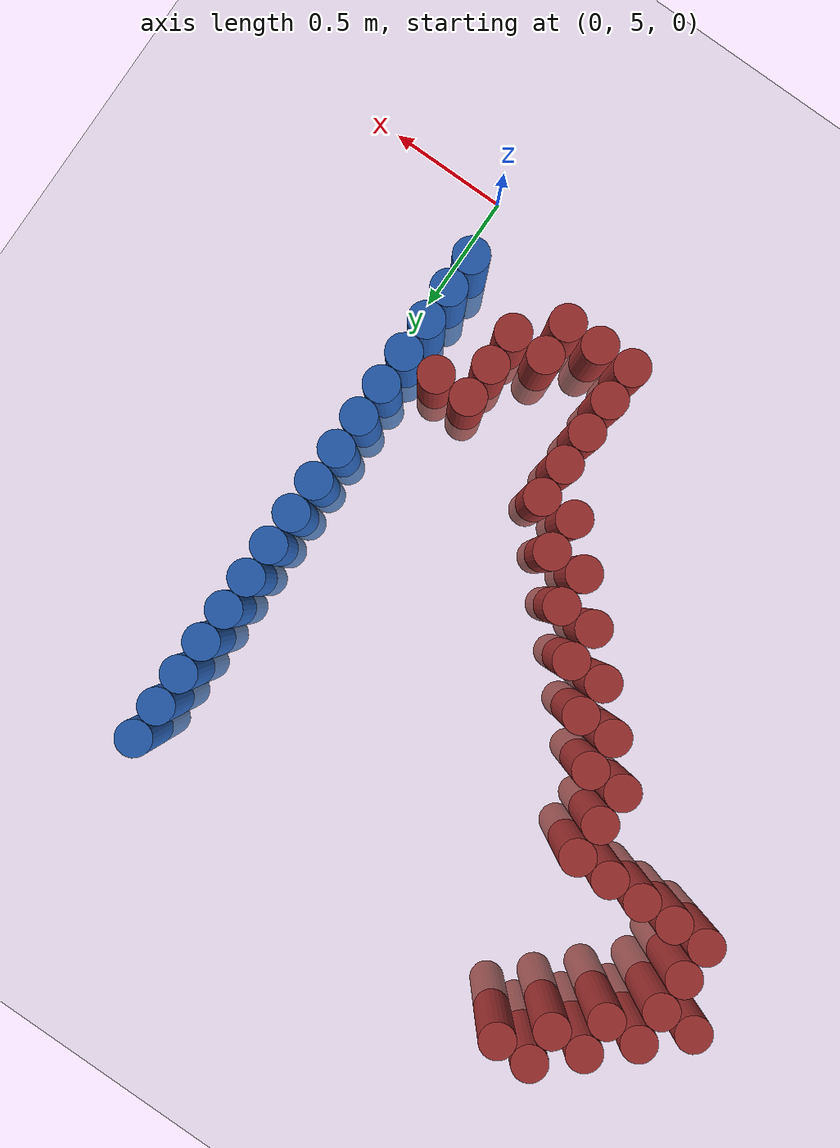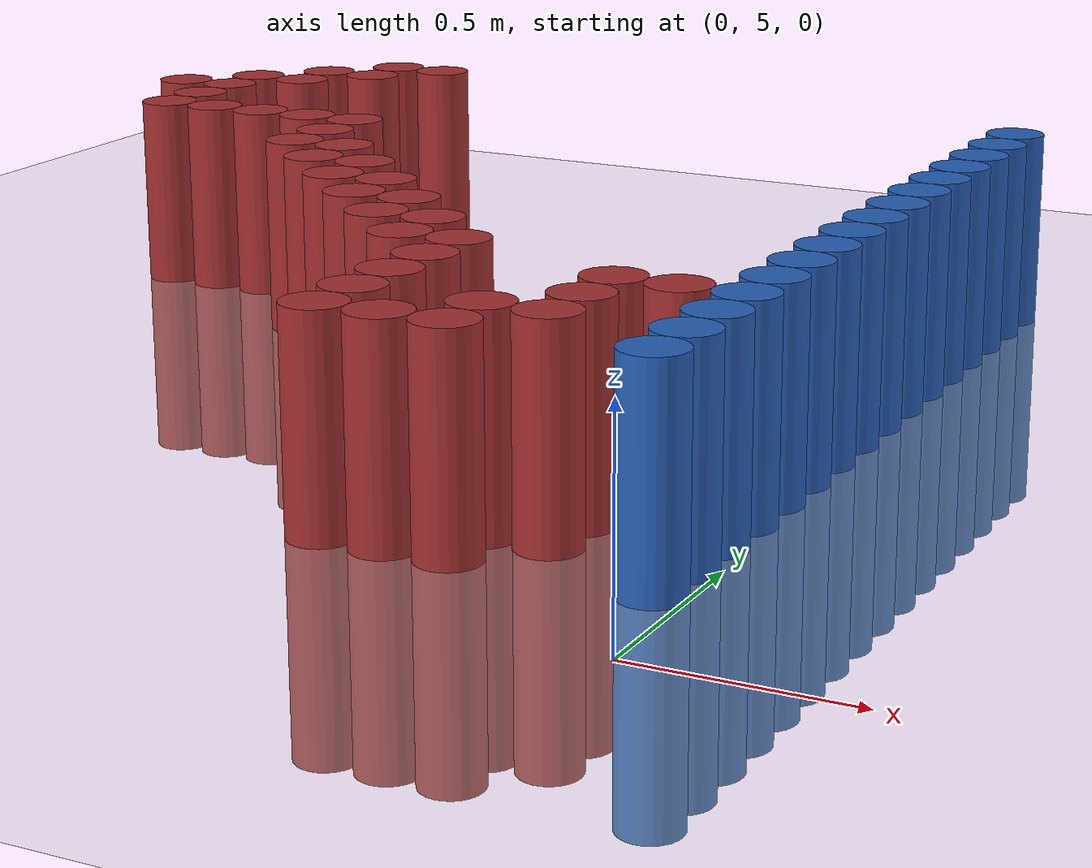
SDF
<sdf version="1.6">
 <world name="default">
  <model name="ground_plane">
   <static>1</static>
   <link name="link">
    <collision name="collision">
     <geometry><plane><normal>0 0 1</normal><size>100 100</size></plane></geometry>
     <surface><friction><ode><mu>100</mu><mu2>50</mu2></ode></friction></surface>
    </collision>
    <visual name="visual">
     <cast_shadows>0</cast_shadows>
     <geometry><plane><normal>0 0 1</normal><size>100 100</size></plane></geometry>
     <material>
      <script><uri>file://media/materials/scripts/gazebo.material</uri><name>Gazebo/Grey</name></script>
     </material>
    </visual>
   </link>
  </model>
  <model name="unit_cylinder_183">
   <static>1</static>
   <pose>-2.475000 7.275000 0.000000 0.000000 0.000000 0.000000</pose>
   <link name="link">
    <inertial>
     <mass>1</mass>
     <inertia><ixx>0.145833</ixx><ixy>0</ixy><ixz>0</ixz><iyy>0.145833</iyy><iyz>0</iyz><izz>0.125</izz></inertia>
    </inertial>
    <collision name="collision">
     <geometry><cylinder><radius>0.075000</radius><length>1</length></cylinder></geometry>
    </collision>
    <visual name="visual">
     <geometry><cylinder><radius>0.075000</radius><length>1</length></cylinder></geometry>
     <material>
      <ambient>0.648000 0.192000 0.192000 1</ambient>
      <diffuse>0.648000 0.192000 0.192000 1</diffuse>
     </material>
     <material>
      <script><name>Gazebo/Grey</name><uri>file://media/materials/scripts/gazebo.material</uri></script>
     </material>
    </visual>
   </link>
  </model>
  <model name="unit_cylinder_184">
   <static>1</static>
   <pose>-2.325000 6.975000 0.000000 0.000000 0.000000 0.000000</pose>
   <link name="link">
    <inertial>
     <mass>1</mass>
     <inertia><ixx>0.145833</ixx><ixy>0</ixy><ixz>0</ixz><iyy>0.145833</iyy><iyz>0</iyz><izz>0.125</izz></inertia>
    </inertial>
    <collision name="collision">
     <geometry><cylinder><radius>0.075000</radius><length>1</length></cylinder></geometry>
    </collision>
    <visual name="visual">
     <geometry><cylinder><radius>0.075000</radius><length>1</length></cylinder></geometry>
     <material>
      <ambient>0.648000 0.192000 0.192000 1</ambient>
      <diffuse>0.648000 0.192000 0.192000 1</diffuse>
     </material>
     <material>
      <script><name>Gazebo/Grey</name><uri>file://media/materials/scripts/gazebo.material</uri></script>
     </material>
    </visual>
   </link>
  </model>
  <model name="unit_cylinder_185">
   <static>1</static>
   <pose>-2.325000 7.125000 0.000000 0.000000 0.000000 0.000000</pose>
   <link name="link">
    <inertial>
     <mass>1</mass>
     <inertia><ixx>0.145833</ixx><ixy>0</ixy><ixz>0</ixz><iyy>0.145833</iyy><iyz>0</iyz><izz>0.125</izz></inertia>
    </inertial>
    <collision name="collision">
     <geometry><cylinder><radius>0.075000</radius><length>1</length></cylinder></geometry>
    </collision>
    <visual name="visual">
     <geometry><cylinder><radius>0.075000</radius><length>1</length></cylinder></geometry>
     <material>
      <ambient>0.648000 0.192000 0.192000 1</ambient>
      <diffuse>0.648000 0.192000 0.192000 1</diffuse>
     </material>
     <material>
      <script><name>Gazebo/Grey</name><uri>file://media/materials/scripts/gazebo.material</uri></script>
     </material>
    </visual>
   </link>
  </model>
  <model name="unit_cylinder_186">
   <static>1</static>
   <pose>-2.325000 7.275000 0.000000 0.000000 0.000000 0.000000</pose>
   <link name="link">
    <inertial>
     <mass>1</mass>
     <inertia><ixx>0.145833</ixx><ixy>0</ixy><ixz>0</ixz><iyy>0.145833</iyy><iyz>0</iyz><izz>0.125</izz></inertia>
    </inertial>
    <collision name="collision">
     <geometry><cylinder><radius>0.075000</radius><length>1</length></cylinder></geometry>
    </collision>
    <visual name="visual">
     <geometry><cylinder><radius>0.075000</radius><length>1</length></cylinder></geometry>
     <material>
      <ambient>0.648000 0.192000 0.192000 1</ambient>
      <diffuse>0.648000 0.192000 0.192000 1</diffuse>
     </material>
     <material>
      <script><name>Gazebo/Grey</name><uri>file://media/materials/scripts/gazebo.material</uri></script>
     </material>
    </visual>
   </link>
  </model>
  <model name="unit_cylinder_187">
   <static>1</static>
   <pose>-2.325000 7.425000 0.000000 0.000000 0.000000 0.000000</pose>
   <link name="link">
    <inertial>
     <mass>1</mass>
     <inertia><ixx>0.145833</ixx><ixy>0</ixy><ixz>0</ixz><iyy>0.145833</iyy><iyz>0</iyz><izz>0.125</izz></inertia>
    </inertial>
    <collision name="collision">
     <geometry><cylinder><radius>0.075000</radius><length>1</length></cylinder></geometry>
    </collision>
    <visual name="visual">
     <geometry><cylinder><radius>0.075000</radius><length>1</length></cylinder></geometry>
     <material>
      <ambient>0.648000 0.192000 0.192000 1</ambient>
      <diffuse>0.648000 0.192000 0.192000 1</diffuse>
     </material>
     <material>
      <script><name>Gazebo/Grey</name><uri>file://media/materials/scripts/gazebo.material</uri></script>
     </material>
    </visual>
   </link>
  </model>
  <model name="unit_cylinder_188">
   <static>1</static>
   <pose>-2.175000 6.975000 0.000000 0.000000 0.000000 0.000000</pose>
   <link name="link">
    <inertial>
     <mass>1</mass>
     <inertia><ixx>0.145833</ixx><ixy>0</ixy><ixz>0</ixz><iyy>0.145833</iyy><iyz>0</iyz><izz>0.125</izz></inertia>
    </inertial>
    <collision name="collision">
     <geometry><cylinder><radius>0.075000</radius><length>1</length></cylinder></geometry>
    </collision>
    <visual name="visual">
     <geometry><cylinder><radius>0.075000</radius><length>1</length></cylinder></geometry>
     <material>
      <ambient>0.648000 0.192000 0.192000 1</ambient>
      <diffuse>0.648000 0.192000 0.192000 1</diffuse>
     </material>
     <material>
      <script><name>Gazebo/Grey</name><uri>file://media/materials/scripts/gazebo.material</uri></script>
     </material>
    </visual>
   </link>
  </model>
  <model name="unit_cylinder_189">
   <static>1</static>
   <pose>-2.175000 7.425000 0.000000 0.000000 0.000000 0.000000</pose>
   <link name="link">
    <inertial>
     <mass>1</mass>
     <inertia><ixx>0.145833</ixx><ixy>0</ixy><ixz>0</ixz><iyy>0.145833</iyy><iyz>0</iyz><izz>0.125</izz></inertia>
    </inertial>
    <collision name="collision">
     <geometry><cylinder><radius>0.075000</radius><length>1</length></cylinder></geometry>
    </collision>
    <visual name="visual">
     <geometry><cylinder><radius>0.075000</radius><length>1</length></cylinder></geometry>
     <material>
      <ambient>0.648000 0.192000 0.192000 1</ambient>
      <diffuse>0.648000 0.192000 0.192000 1</diffuse>
     </material>
     <material>
      <script><name>Gazebo/Grey</name><uri>file://media/materials/scripts/gazebo.material</uri></script>
     </material>
    </visual>
   </link>
  </model>
  <model name="unit_cylinder_190">
   <static>1</static>
   <pose>-2.175000 7.575000 0.000000 0.000000 0.000000 0.000000</pose>
   <link name="link">
    <inertial>
     <mass>1</mass>
     <inertia><ixx>0.145833</ixx><ixy>0</ixy><ixz>0</ixz><iyy>0.145833</iyy><iyz>0</iyz><izz>0.125</izz></inertia>
    </inertial>
    <collision name="collision">
     <geometry><cylinder><radius>0.075000</radius><length>1</length></cylinder></geometry>
    </collision>
    <visual name="visual">
     <geometry><cylinder><radius>0.075000</radius><length>1</length></cylinder></geometry>
     <material>
      <ambient>0.648000 0.192000 0.192000 1</ambient>
      <diffuse>0.648000 0.192000 0.192000 1</diffuse>
     </material>
     <material>
      <script><name>Gazebo/Grey</name><uri>file://media/materials/scripts/gazebo.material</uri></script>
     </material>
    </visual>
   </link>
  </model>
  <model name="unit_cylinder_191">
   <static>1</static>
   <pose>-2.025000 6.975000 0.000000 0.000000 0.000000 0.000000</pose>
   <link name="link">
    <inertial>
     <mass>1</mass>
     <inertia><ixx>0.145833</ixx><ixy>0</ixy><ixz>0</ixz><iyy>0.145833</iyy><iyz>0</iyz><izz>0.125</izz></inertia>
    </inertial>
    <collision name="collision">
     <geometry><cylinder><radius>0.075000</radius><length>1</length></cylinder></geometry>
    </collision>
    <visual name="visual">
     <geometry><cylinder><radius>0.075000</radius><length>1</length></cylinder></geometry>
     <material>
      <ambient>0.648000 0.192000 0.192000 1</ambient>
      <diffuse>0.648000 0.192000 0.192000 1</diffuse>
     </material>
     <material>
      <script><name>Gazebo/Grey</name><uri>file://media/materials/scripts/gazebo.material</uri></script>
     </material>
    </visual>
   </link>
  </model>
  <model name="unit_cylinder_192">
   <static>1</static>
   <pose>-2.025000 7.575000 0.000000 0.000000 0.000000 0.000000</pose>
   <link name="link">
    <inertial>
     <mass>1</mass>
     <inertia><ixx>0.145833</ixx><ixy>0</ixy><ixz>0</ixz><iyy>0.145833</iyy><iyz>0</iyz><izz>0.125</izz></inertia>
    </inertial>
    <collision name="collision">
     <geometry><cylinder><radius>0.075000</radius><length>1</length></cylinder></geometry>
    </collision>
    <visual name="visual">
     <geometry><cylinder><radius>0.075000</radius><length>1</length></cylinder></geometry>
     <material>
      <ambient>0.648000 0.192000 0.192000 1</ambient>
      <diffuse>0.648000 0.192000 0.192000 1</diffuse>
     </material>
     <material>
      <script><name>Gazebo/Grey</name><uri>file://media/materials/scripts/gazebo.material</uri></script>
     </material>
    </visual>
   </link>
  </model>
  <model name="unit_cylinder_193">
   <static>1</static>
   <pose>-2.025000 7.725000 0.000000 0.000000 0.000000 0.000000</pose>
   <link name="link">
    <inertial>
     <mass>1</mass>
     <inertia><ixx>0.145833</ixx><ixy>0</ixy><ixz>0</ixz><iyy>0.145833</iyy><iyz>0</iyz><izz>0.125</izz></inertia>
    </inertial>
    <collision name="collision">
     <geometry><cylinder><radius>0.075000</radius><length>1</length></cylinder></geometry>
    </collision>
    <visual name="visual">
     <geometry><cylinder><radius>0.075000</radius><length>1</length></cylinder></geometry>
     <material>
      <ambient>0.648000 0.192000 0.192000 1</ambient>
      <diffuse>0.648000 0.192000 0.192000 1</diffuse>
     </material>
     <material>
      <script><name>Gazebo/Grey</name><uri>file://media/materials/scripts/gazebo.material</uri></script>
     </material>
    </visual>
   </link>
  </model>
  <model name="unit_cylinder_194">
   <static>1</static>
   <pose>-1.875000 6.975000 0.000000 0.000000 0.000000 0.000000</pose>
   <link name="link">
    <inertial>
     <mass>1</mass>
     <inertia><ixx>0.145833</ixx><ixy>0</ixy><ixz>0</ixz><iyy>0.145833</iyy><iyz>0</iyz><izz>0.125</izz></inertia>
    </inertial>
    <collision name="collision">
     <geometry><cylinder><radius>0.075000</radius><length>1</length></cylinder></geometry>
    </collision>
    <visual name="visual">
     <geometry><cylinder><radius>0.075000</radius><length>1</length></cylinder></geometry>
     <material>
      <ambient>0.648000 0.192000 0.192000 1</ambient>
      <diffuse>0.648000 0.192000 0.192000 1</diffuse>
     </material>
     <material>
      <script><name>Gazebo/Grey</name><uri>file://media/materials/scripts/gazebo.material</uri></script>
     </material>
    </visual>
   </link>
  </model>
  <model name="unit_cylinder_195">
   <static>1</static>
   <pose>-1.875000 7.725000 0.000000 0.000000 0.000000 0.000000</pose>
   <link name="link">
    <inertial>
     <mass>1</mass>
     <inertia><ixx>0.145833</ixx><ixy>0</ixy><ixz>0</ixz><iyy>0.145833</iyy><iyz>0</iyz><izz>0.125</izz></inertia>
    </inertial>
    <collision name="collision">
     <geometry><cylinder><radius>0.075000</radius><length>1</length></cylinder></geometry>
    </collision>
    <visual name="visual">
     <geometry><cylinder><radius>0.075000</radius><length>1</length></cylinder></geometry>
     <material>
      <ambient>0.648000 0.192000 0.192000 1</ambient>
      <diffuse>0.648000 0.192000 0.192000 1</diffuse>
     </material>
     <material>
      <script><name>Gazebo/Grey</name><uri>file://media/materials/scripts/gazebo.material</uri></script>
     </material>
    </visual>
   </link>
  </model>
  <model name="unit_cylinder_196">
   <static>1</static>
   <pose>-1.725000 6.675000 0.000000 0.000000 0.000000 0.000000</pose>
   <link name="link">
    <inertial>
     <mass>1</mass>
     <inertia><ixx>0.145833</ixx><ixy>0</ixy><ixz>0</ixz><iyy>0.145833</iyy><iyz>0</iyz><izz>0.125</izz></inertia>
    </inertial>
    <collision name="collision">
     <geometry><cylinder><radius>0.075000</radius><length>1</length></cylinder></geometry>
    </collision>
    <visual name="visual">
     <geometry><cylinder><radius>0.075000</radius><length>1</length></cylinder></geometry>
     <material>
      <ambient>0.648000 0.192000 0.192000 1</ambient>
      <diffuse>0.648000 0.192000 0.192000 1</diffuse>
     </material>
     <material>
      <script><name>Gazebo/Grey</name><uri>file://media/materials/scripts/gazebo.material</uri></script>
     </material>
    </visual>
   </link>
  </model>
  <model name="unit_cylinder_197">
   <static>1</static>
   <pose>-1.725000 6.825000 0.000000 0.000000 0.000000 0.000000</pose>
   <link name="link">
    <inertial>
     <mass>1</mass>
     <inertia><ixx>0.145833</ixx><ixy>0</ixy><ixz>0</ixz><iyy>0.145833</iyy><iyz>0</iyz><izz>0.125</izz></inertia>
    </inertial>
    <collision name="collision">
     <geometry><cylinder><radius>0.075000</radius><length>1</length></cylinder></geometry>
    </collision>
    <visual name="visual">
     <geometry><cylinder><radius>0.075000</radius><length>1</length></cylinder></geometry>
     <material>
      <ambient>0.648000 0.192000 0.192000 1</ambient>
      <diffuse>0.648000 0.192000 0.192000 1</diffuse>
     </material>
     <material>
      <script><name>Gazebo/Grey</name><uri>file://media/materials/scripts/gazebo.material</uri></script>
     </material>
    </visual>
   </link>
  </model>
  <model name="unit_cylinder_198">
   <static>1</static>
   <pose>-1.725000 6.975000 0.000000 0.000000 0.000000 0.000000</pose>
   <link name="link">
    <inertial>
     <mass>1</mass>
     <inertia><ixx>0.145833</ixx><ixy>0</ixy><ixz>0</ixz><iyy>0.145833</iyy><iyz>0</iyz><izz>0.125</izz></inertia>
    </inertial>
    <collision name="collision">
     <geometry><cylinder><radius>0.075000</radius><length>1</length></cylinder></geometry>
    </collision>
    <visual name="visual">
     <geometry><cylinder><radius>0.075000</radius><length>1</length></cylinder></geometry>
     <material>
      <ambient>0.648000 0.192000 0.192000 1</ambient>
      <diffuse>0.648000 0.192000 0.192000 1</diffuse>
     </material>
     <material>
      <script><name>Gazebo/Grey</name><uri>file://media/materials/scripts/gazebo.material</uri></script>
     </material>
    </visual>
   </link>
  </model>
  <model name="unit_cylinder_201">
   <static>1</static>
   <pose>-1.575000 6.525000 0.000000 0.000000 0.000000 0.000000</pose>
   <link name="link">
    <inertial>
     <mass>1</mass>
     <inertia><ixx>0.145833</ixx><ixy>0</ixy><ixz>0</ixz><iyy>0.145833</iyy><iyz>0</iyz><izz>0.125</izz></inertia>
    </inertial>
    <collision name="collision">
     <geometry><cylinder><radius>0.075000</radius><length>1</length></cylinder></geometry>
    </collision>
    <visual name="visual">
     <geometry><cylinder><radius>0.075000</radius><length>1</length></cylinder></geometry>
     <material>
      <ambient>0.648000 0.192000 0.192000 1</ambient>
      <diffuse>0.648000 0.192000 0.192000 1</diffuse>
     </material>
     <material>
      <script><name>Gazebo/Grey</name><uri>file://media/materials/scripts/gazebo.material</uri></script>
     </material>
    </visual>
   </link>
  </model>
  <model name="unit_cylinder_202">
   <static>1</static>
   <pose>-1.575000 6.675000 0.000000 0.000000 0.000000 0.000000</pose>
   <link name="link">
    <inertial>
     <mass>1</mass>
     <inertia><ixx>0.145833</ixx><ixy>0</ixy><ixz>0</ixz><iyy>0.145833</iyy><iyz>0</iyz><izz>0.125</izz></inertia>
    </inertial>
    <collision name="collision">
     <geometry><cylinder><radius>0.075000</radius><length>1</length></cylinder></geometry>
    </collision>
    <visual name="visual">
     <geometry><cylinder><radius>0.075000</radius><length>1</length></cylinder></geometry>
     <material>
      <ambient>0.648000 0.192000 0.192000 1</ambient>
      <diffuse>0.648000 0.192000 0.192000 1</diffuse>
     </material>
     <material>
      <script><name>Gazebo/Grey</name><uri>file://media/materials/scripts/gazebo.material</uri></script>
     </material>
    </visual>
   </link>
  </model>
  <model name="unit_cylinder_205">
   <static>1</static>
   <pose>-1.425000 6.375000 0.000000 0.000000 0.000000 0.000000</pose>
   <link name="link">
    <inertial>
     <mass>1</mass>
     <inertia><ixx>0.145833</ixx><ixy>0</ixy><ixz>0</ixz><iyy>0.145833</iyy><iyz>0</iyz><izz>0.125</izz></inertia>
    </inertial>
    <collision name="collision">
     <geometry><cylinder><radius>0.075000</radius><length>1</length></cylinder></geometry>
    </collision>
    <visual name="visual">
     <geometry><cylinder><radius>0.075000</radius><length>1</length></cylinder></geometry>
     <material>
      <ambient>0.648000 0.192000 0.192000 1</ambient>
      <diffuse>0.648000 0.192000 0.192000 1</diffuse>
     </material>
     <material>
      <script><name>Gazebo/Grey</name><uri>file://media/materials/scripts/gazebo.material</uri></script>
     </material>
    </visual>
   </link>
  </model>
  <model name="unit_cylinder_206">
   <static>1</static>
   <pose>-1.425000 6.525000 0.000000 0.000000 0.000000 0.000000</pose>
   <link name="link">
    <inertial>
     <mass>1</mass>
     <inertia><ixx>0.145833</ixx><ixy>0</ixy><ixz>0</ixz><iyy>0.145833</iyy><iyz>0</iyz><izz>0.125</izz></inertia>
    </inertial>
    <collision name="collision">
     <geometry><cylinder><radius>0.075000</radius><length>1</length></cylinder></geometry>
    </collision>
    <visual name="visual">
     <geometry><cylinder><radius>0.075000</radius><length>1</length></cylinder></geometry>
     <material>
      <ambient>0.648000 0.192000 0.192000 1</ambient>
      <diffuse>0.648000 0.192000 0.192000 1</diffuse>
     </material>
     <material>
      <script><name>Gazebo/Grey</name><uri>file://media/materials/scripts/gazebo.material</uri></script>
     </material>
    </visual>
   </link>
  </model>
  <model name="unit_cylinder_208">
   <static>1</static>
   <pose>-1.275000 6.225000 0.000000 0.000000 0.000000 0.000000</pose>
   <link name="link">
    <inertial>
     <mass>1</mass>
     <inertia><ixx>0.145833</ixx><ixy>0</ixy><ixz>0</ixz><iyy>0.145833</iyy><iyz>0</iyz><izz>0.125</izz></inertia>
    </inertial>
    <collision name="collision">
     <geometry><cylinder><radius>0.075000</radius><length>1</length></cylinder></geometry>
    </collision>
    <visual name="visual">
     <geometry><cylinder><radius>0.075000</radius><length>1</length></cylinder></geometry>
     <material>
      <ambient>0.648000 0.192000 0.192000 1</ambient>
      <diffuse>0.648000 0.192000 0.192000 1</diffuse>
     </material>
     <material>
      <script><name>Gazebo/Grey</name><uri>file://media/materials/scripts/gazebo.material</uri></script>
     </material>
    </visual>
   </link>
  </model>
  <model name="unit_cylinder_209">
   <static>1</static>
   <pose>-1.275000 6.375000 0.000000 0.000000 0.000000 0.000000</pose>
   <link name="link">
    <inertial>
     <mass>1</mass>
     <inertia><ixx>0.145833</ixx><ixy>0</ixy><ixz>0</ixz><iyy>0.145833</iyy><iyz>0</iyz><izz>0.125</izz></inertia>
    </inertial>
    <collision name="collision">
     <geometry><cylinder><radius>0.075000</radius><length>1</length></cylinder></geometry>
    </collision>
    <visual name="visual">
     <geometry><cylinder><radius>0.075000</radius><length>1</length></cylinder></geometry>
     <material>
      <ambient>0.648000 0.192000 0.192000 1</ambient>
      <diffuse>0.648000 0.192000 0.192000 1</diffuse>
     </material>
     <material>
      <script><name>Gazebo/Grey</name><uri>file://media/materials/scripts/gazebo.material</uri></script>
     </material>
    </visual>
   </link>
  </model>
  <model name="unit_cylinder_211">
   <static>1</static>
   <pose>-1.125000 6.075000 0.000000 0.000000 0.000000 0.000000</pose>
   <link name="link">
    <inertial>
     <mass>1</mass>
     <inertia><ixx>0.145833</ixx><ixy>0</ixy><ixz>0</ixz><iyy>0.145833</iyy><iyz>0</iyz><izz>0.125</izz></inertia>
    </inertial>
    <collision name="collision">
     <geometry><cylinder><radius>0.075000</radius><length>1</length></cylinder></geometry>
    </collision>
    <visual name="visual">
     <geometry><cylinder><radius>0.075000</radius><length>1</length></cylinder></geometry>
     <material>
      <ambient>0.648000 0.192000 0.192000 1</ambient>
      <diffuse>0.648000 0.192000 0.192000 1</diffuse>
     </material>
     <material>
      <script><name>Gazebo/Grey</name><uri>file://media/materials/scripts/gazebo.material</uri></script>
     </material>
    </visual>
   </link>
  </model>
  <model name="unit_cylinder_212">
   <static>1</static>
   <pose>-1.125000 6.225000 0.000000 0.000000 0.000000 0.000000</pose>
   <link name="link">
    <inertial>
     <mass>1</mass>
     <inertia><ixx>0.145833</ixx><ixy>0</ixy><ixz>0</ixz><iyy>0.145833</iyy><iyz>0</iyz><izz>0.125</izz></inertia>
    </inertial>
    <collision name="collision">
     <geometry><cylinder><radius>0.075000</radius><length>1</length></cylinder></geometry>
    </collision>
    <visual name="visual">
     <geometry><cylinder><radius>0.075000</radius><length>1</length></cylinder></geometry>
     <material>
      <ambient>0.648000 0.192000 0.192000 1</ambient>
      <diffuse>0.648000 0.192000 0.192000 1</diffuse>
     </material>
     <material>
      <script><name>Gazebo/Grey</name><uri>file://media/materials/scripts/gazebo.material</uri></script>
     </material>
    </visual>
   </link>
  </model>
  <model name="unit_cylinder_214">
   <static>1</static>
   <pose>-0.975000 5.925000 0.000000 0.000000 0.000000 0.000000</pose>
   <link name="link">
    <inertial>
     <mass>1</mass>
     <inertia><ixx>0.145833</ixx><ixy>0</ixy><ixz>0</ixz><iyy>0.145833</iyy><iyz>0</iyz><izz>0.125</izz></inertia>
    </inertial>
    <collision name="collision">
     <geometry><cylinder><radius>0.075000</radius><length>1</length></cylinder></geometry>
    </collision>
    <visual name="visual">
     <geometry><cylinder><radius>0.075000</radius><length>1</length></cylinder></geometry>
     <material>
      <ambient>0.648000 0.192000 0.192000 1</ambient>
      <diffuse>0.648000 0.192000 0.192000 1</diffuse>
     </material>
     <material>
      <script><name>Gazebo/Grey</name><uri>file://media/materials/scripts/gazebo.material</uri></script>
     </material>
    </visual>
   </link>
  </model>
  <model name="unit_cylinder_215">
   <static>1</static>
   <pose>-0.975000 6.075000 0.000000 0.000000 0.000000 0.000000</pose>
   <link name="link">
    <inertial>
     <mass>1</mass>
     <inertia><ixx>0.145833</ixx><ixy>0</ixy><ixz>0</ixz><iyy>0.145833</iyy><iyz>0</iyz><izz>0.125</izz></inertia>
    </inertial>
    <collision name="collision">
     <geometry><cylinder><radius>0.075000</radius><length>1</length></cylinder></geometry>
    </collision>
    <visual name="visual">
     <geometry><cylinder><radius>0.075000</radius><length>1</length></cylinder></geometry>
     <material>
      <ambient>0.648000 0.192000 0.192000 1</ambient>
      <diffuse>0.648000 0.192000 0.192000 1</diffuse>
     </material>
     <material>
      <script><name>Gazebo/Grey</name><uri>file://media/materials/scripts/gazebo.material</uri></script>
     </material>
    </visual>
   </link>
  </model>
  <model name="unit_cylinder_218">
   <static>1</static>
   <pose>-0.825000 5.325000 0.000000 0.000000 0.000000 0.000000</pose>
   <link name="link">
    <inertial>
     <mass>1</mass>
     <inertia><ixx>0.145833</ixx><ixy>0</ixy><ixz>0</ixz><iyy>0.145833</iyy><iyz>0</iyz><izz>0.125</izz></inertia>
    </inertial>
    <collision name="collision">
     <geometry><cylinder><radius>0.075000</radius><length>1</length></cylinder></geometry>
    </collision>
    <visual name="visual">
     <geometry><cylinder><radius>0.075000</radius><length>1</length></cylinder></geometry>
     <material>
      <ambient>0.648000 0.192000 0.192000 1</ambient>
      <diffuse>0.648000 0.192000 0.192000 1</diffuse>
     </material>
     <material>
      <script><name>Gazebo/Grey</name><uri>file://media/materials/scripts/gazebo.material</uri></script>
     </material>
    </visual>
   </link>
  </model>
  <model name="unit_cylinder_219">
   <static>1</static>
   <pose>-0.825000 5.475000 0.000000 0.000000 0.000000 0.000000</pose>
   <link name="link">
    <inertial>
     <mass>1</mass>
     <inertia><ixx>0.145833</ixx><ixy>0</ixy><ixz>0</ixz><iyy>0.145833</iyy><iyz>0</iyz><izz>0.125</izz></inertia>
    </inertial>
    <collision name="collision">
     <geometry><cylinder><radius>0.075000</radius><length>1</length></cylinder></geometry>
    </collision>
    <visual name="visual">
     <geometry><cylinder><radius>0.075000</radius><length>1</length></cylinder></geometry>
     <material>
      <ambient>0.648000 0.192000 0.192000 1</ambient>
      <diffuse>0.648000 0.192000 0.192000 1</diffuse>
     </material>
     <material>
      <script><name>Gazebo/Grey</name><uri>file://media/materials/scripts/gazebo.material</uri></script>
     </material>
    </visual>
   </link>
  </model>
  <model name="unit_cylinder_220">
   <static>1</static>
   <pose>-0.825000 5.625000 0.000000 0.000000 0.000000 0.000000</pose>
   <link name="link">
    <inertial>
     <mass>1</mass>
     <inertia><ixx>0.145833</ixx><ixy>0</ixy><ixz>0</ixz><iyy>0.145833</iyy><iyz>0</iyz><izz>0.125</izz></inertia>
    </inertial>
    <collision name="collision">
     <geometry><cylinder><radius>0.075000</radius><length>1</length></cylinder></geometry>
    </collision>
    <visual name="visual">
     <geometry><cylinder><radius>0.075000</radius><length>1</length></cylinder></geometry>
     <material>
      <ambient>0.648000 0.192000 0.192000 1</ambient>
      <diffuse>0.648000 0.192000 0.192000 1</diffuse>
     </material>
     <material>
      <script><name>Gazebo/Grey</name><uri>file://media/materials/scripts/gazebo.material</uri></script>
     </material>
    </visual>
   </link>
  </model>
  <model name="unit_cylinder_221">
   <static>1</static>
   <pose>-0.825000 5.775000 0.000000 0.000000 0.000000 0.000000</pose>
   <link name="link">
    <inertial>
     <mass>1</mass>
     <inertia><ixx>0.145833</ixx><ixy>0</ixy><ixz>0</ixz><iyy>0.145833</iyy><iyz>0</iyz><izz>0.125</izz></inertia>
    </inertial>
    <collision name="collision">
     <geometry><cylinder><radius>0.075000</radius><length>1</length></cylinder></geometry>
    </collision>
    <visual name="visual">
     <geometry><cylinder><radius>0.075000</radius><length>1</length></cylinder></geometry>
     <material>
      <ambient>0.648000 0.192000 0.192000 1</ambient>
      <diffuse>0.648000 0.192000 0.192000 1</diffuse>
     </material>
     <material>
      <script><name>Gazebo/Grey</name><uri>file://media/materials/scripts/gazebo.material</uri></script>
     </material>
    </visual>
   </link>
  </model>
  <model name="unit_cylinder_222">
   <static>1</static>
   <pose>-0.825000 5.925000 0.000000 0.000000 0.000000 0.000000</pose>
   <link name="link">
    <inertial>
     <mass>1</mass>
     <inertia><ixx>0.145833</ixx><ixy>0</ixy><ixz>0</ixz><iyy>0.145833</iyy><iyz>0</iyz><izz>0.125</izz></inertia>
    </inertial>
    <collision name="collision">
     <geometry><cylinder><radius>0.075000</radius><length>1</length></cylinder></geometry>
    </collision>
    <visual name="visual">
     <geometry><cylinder><radius>0.075000</radius><length>1</length></cylinder></geometry>
     <material>
      <ambient>0.648000 0.192000 0.192000 1</ambient>
      <diffuse>0.648000 0.192000 0.192000 1</diffuse>
     </material>
     <material>
      <script><name>Gazebo/Grey</name><uri>file://media/materials/scripts/gazebo.material</uri></script>
     </material>
    </visual>
   </link>
  </model>
  <model name="unit_cylinder_226">
   <static>1</static>
   <pose>-0.675000 5.325000 0.000000 0.000000 0.000000 0.000000</pose>
   <link name="link">
    <inertial>
     <mass>1</mass>
     <inertia><ixx>0.145833</ixx><ixy>0</ixy><ixz>0</ixz><iyy>0.145833</iyy><iyz>0</iyz><izz>0.125</izz></inertia>
    </inertial>
    <collision name="collision">
     <geometry><cylinder><radius>0.075000</radius><length>1</length></cylinder></geometry>
    </collision>
    <visual name="visual">
     <geometry><cylinder><radius>0.075000</radius><length>1</length></cylinder></geometry>
     <material>
      <ambient>0.648000 0.192000 0.192000 1</ambient>
      <diffuse>0.648000 0.192000 0.192000 1</diffuse>
     </material>
     <material>
      <script><name>Gazebo/Grey</name><uri>file://media/materials/scripts/gazebo.material</uri></script>
     </material>
    </visual>
   </link>
  </model>
  <model name="unit_cylinder_230">
   <static>1</static>
   <pose>-0.525000 5.325000 0.000000 0.000000 0.000000 0.000000</pose>
   <link name="link">
    <inertial>
     <mass>1</mass>
     <inertia><ixx>0.145833</ixx><ixy>0</ixy><ixz>0</ixz><iyy>0.145833</iyy><iyz>0</iyz><izz>0.125</izz></inertia>
    </inertial>
    <collision name="collision">
     <geometry><cylinder><radius>0.075000</radius><length>1</length></cylinder></geometry>
    </collision>
    <visual name="visual">
     <geometry><cylinder><radius>0.075000</radius><length>1</length></cylinder></geometry>
     <material>
      <ambient>0.648000 0.192000 0.192000 1</ambient>
      <diffuse>0.648000 0.192000 0.192000 1</diffuse>
     </material>
     <material>
      <script><name>Gazebo/Grey</name><uri>file://media/materials/scripts/gazebo.material</uri></script>
     </material>
    </visual>
   </link>
  </model>
  <model name="unit_cylinder_231">
   <static>1</static>
   <pose>-0.525000 5.475000 0.000000 0.000000 0.000000 0.000000</pose>
   <link name="link">
    <inertial>
     <mass>1</mass>
     <inertia><ixx>0.145833</ixx><ixy>0</ixy><ixz>0</ixz><iyy>0.145833</iyy><iyz>0</iyz><izz>0.125</izz></inertia>
    </inertial>
    <collision name="collision">
     <geometry><cylinder><radius>0.075000</radius><length>1</length></cylinder></geometry>
    </collision>
    <visual name="visual">
     <geometry><cylinder><radius>0.075000</radius><length>1</length></cylinder></geometry>
     <material>
      <ambient>0.648000 0.192000 0.192000 1</ambient>
      <diffuse>0.648000 0.192000 0.192000 1</diffuse>
     </material>
     <material>
      <script><name>Gazebo/Grey</name><uri>file://media/materials/scripts/gazebo.material</uri></script>
     </material>
    </visual>
   </link>
  </model>
  <model name="unit_cylinder_234">
   <static>1</static>
   <pose>-0.375000 5.475000 0.000000 0.000000 0.000000 0.000000</pose>
   <link name="link">
    <inertial>
     <mass>1</mass>
     <inertia><ixx>0.145833</ixx><ixy>0</ixy><ixz>0</ixz><iyy>0.145833</iyy><iyz>0</iyz><izz>0.125</izz></inertia>
    </inertial>
    <collision name="collision">
     <geometry><cylinder><radius>0.075000</radius><length>1</length></cylinder></geometry>
    </collision>
    <visual name="visual">
     <geometry><cylinder><radius>0.075000</radius><length>1</length></cylinder></geometry>
     <material>
      <ambient>0.648000 0.192000 0.192000 1</ambient>
      <diffuse>0.648000 0.192000 0.192000 1</diffuse>
     </material>
     <material>
      <script><name>Gazebo/Grey</name><uri>file://media/materials/scripts/gazebo.material</uri></script>
     </material>
    </visual>
   </link>
  </model>
  <model name="unit_cylinder_235">
   <static>1</static>
   <pose>-0.375000 5.625000 0.000000 0.000000 0.000000 0.000000</pose>
   <link name="link">
    <inertial>
     <mass>1</mass>
     <inertia><ixx>0.145833</ixx><ixy>0</ixy><ixz>0</ixz><iyy>0.145833</iyy><iyz>0</iyz><izz>0.125</izz></inertia>
    </inertial>
    <collision name="collision">
     <geometry><cylinder><radius>0.075000</radius><length>1</length></cylinder></geometry>
    </collision>
    <visual name="visual">
     <geometry><cylinder><radius>0.075000</radius><length>1</length></cylinder></geometry>
     <material>
      <ambient>0.648000 0.192000 0.192000 1</ambient>
      <diffuse>0.648000 0.192000 0.192000 1</diffuse>
     </material>
     <material>
      <script><name>Gazebo/Grey</name><uri>file://media/materials/scripts/gazebo.material</uri></script>
     </material>
    </visual>
   </link>
  </model>
  <model name="unit_cylinder_236">
   <static>1</static>
   <pose>-0.375000 5.775000 0.000000 0.000000 0.000000 0.000000</pose>
   <link name="link">
    <inertial>
     <mass>1</mass>
     <inertia><ixx>0.145833</ixx><ixy>0</ixy><ixz>0</ixz><iyy>0.145833</iyy><iyz>0</iyz><izz>0.125</izz></inertia>
    </inertial>
    <collision name="collision">
     <geometry><cylinder><radius>0.075000</radius><length>1</length></cylinder></geometry>
    </collision>
    <visual name="visual">
     <geometry><cylinder><radius>0.075000</radius><length>1</length></cylinder></geometry>
     <material>
      <ambient>0.648000 0.192000 0.192000 1</ambient>
      <diffuse>0.648000 0.192000 0.192000 1</diffuse>
     </material>
     <material>
      <script><name>Gazebo/Grey</name><uri>file://media/materials/scripts/gazebo.material</uri></script>
     </material>
    </visual>
   </link>
  </model>
  <model name="unit_cylinder_239">
   <static>1</static>
   <pose>-0.225000 5.775000 0.000000 0.000000 0.000000 0.000000</pose>
   <link name="link">
    <inertial>
     <mass>1</mass>
     <inertia><ixx>0.145833</ixx><ixy>0</ixy><ixz>0</ixz><iyy>0.145833</iyy><iyz>0</iyz><izz>0.125</izz></inertia>
    </inertial>
    <collision name="collision">
     <geometry><cylinder><radius>0.075000</radius><length>1</length></cylinder></geometry>
    </collision>
    <visual name="visual">
     <geometry><cylinder><radius>0.075000</radius><length>1</length></cylinder></geometry>
     <material>
      <ambient>0.648000 0.192000 0.192000 1</ambient>
      <diffuse>0.648000 0.192000 0.192000 1</diffuse>
     </material>
     <material>
      <script><name>Gazebo/Grey</name><uri>file://media/materials/scripts/gazebo.material</uri></script>
     </material>
    </visual>
   </link>
  </model>
  <model name="unit_cylinder_243">
   <static>1</static>
   <pose>-0.075000 5.325000 0.000000 0.000000 0.000000 0.000000</pose>
   <link name="link">
    <inertial>
     <mass>1</mass>
     <inertia><ixx>0.145833</ixx><ixy>0</ixy><ixz>0</ixz><iyy>0.145833</iyy><iyz>0</iyz><izz>0.125</izz></inertia>
    </inertial>
    <collision name="collision">
     <geometry><cylinder><radius>0.075000</radius><length>1</length></cylinder></geometry>
    </collision>
    <visual name="visual">
     <geometry><cylinder><radius>0.075000</radius><length>1</length></cylinder></geometry>
     <material>
      <ambient>0.152000 0.379000 0.720000 1</ambient>
      <diffuse>0.152000 0.379000 0.720000 1</diffuse>
     </material>
     <material>
      <script><name>Gazebo/Grey</name><uri>file://media/materials/scripts/gazebo.material</uri></script>
     </material>
    </visual>
   </link>
  </model>
  <model name="unit_cylinder_244">
   <static>1</static>
   <pose>-0.075000 5.475000 0.000000 0.000000 0.000000 0.000000</pose>
   <link name="link">
    <inertial>
     <mass>1</mass>
     <inertia><ixx>0.145833</ixx><ixy>0</ixy><ixz>0</ixz><iyy>0.145833</iyy><iyz>0</iyz><izz>0.125</izz></inertia>
    </inertial>
    <collision name="collision">
     <geometry><cylinder><radius>0.075000</radius><length>1</length></cylinder></geometry>
    </collision>
    <visual name="visual">
     <geometry><cylinder><radius>0.075000</radius><length>1</length></cylinder></geometry>
     <material>
      <ambient>0.152000 0.379000 0.720000 1</ambient>
      <diffuse>0.152000 0.379000 0.720000 1</diffuse>
     </material>
     <material>
      <script><name>Gazebo/Grey</name><uri>file://media/materials/scripts/gazebo.material</uri></script>
     </material>
    </visual>
   </link>
  </model>
  <model name="unit_cylinder_245">
   <static>1</static>
   <pose>-0.075000 5.625000 0.000000 0.000000 0.000000 0.000000</pose>
   <link name="link">
    <inertial>
     <mass>1</mass>
     <inertia><ixx>0.145833</ixx><ixy>0</ixy><ixz>0</ixz><iyy>0.145833</iyy><iyz>0</iyz><izz>0.125</izz></inertia>
    </inertial>
    <collision name="collision">
     <geometry><cylinder><radius>0.075000</radius><length>1</length></cylinder></geometry>
    </collision>
    <visual name="visual">
     <geometry><cylinder><radius>0.075000</radius><length>1</length></cylinder></geometry>
     <material>
      <ambient>0.152000 0.379000 0.720000 1</ambient>
      <diffuse>0.152000 0.379000 0.720000 1</diffuse>
     </material>
     <material>
      <script><name>Gazebo/Grey</name><uri>file://media/materials/scripts/gazebo.material</uri></script>
     </material>
    </visual>
   </link>
  </model>
  <model name="unit_cylinder_246">
   <static>1</static>
   <pose>-0.075000 5.775000 0.000000 0.000000 0.000000 0.000000</pose>
   <link name="link">
    <inertial>
     <mass>1</mass>
     <inertia><ixx>0.145833</ixx><ixy>0</ixy><ixz>0</ixz><iyy>0.145833</iyy><iyz>0</iyz><izz>0.125</izz></inertia>
    </inertial>
    <collision name="collision">
     <geometry><cylinder><radius>0.075000</radius><length>1</length></cylinder></geometry>
    </collision>
    <visual name="visual">
     <geometry><cylinder><radius>0.075000</radius><length>1</length></cylinder></geometry>
     <material>
      <ambient>0.152000 0.379000 0.720000 1</ambient>
      <diffuse>0.152000 0.379000 0.720000 1</diffuse>
     </material>
     <material>
      <script><name>Gazebo/Grey</name><uri>file://media/materials/scripts/gazebo.material</uri></script>
     </material>
    </visual>
   </link>
  </model>
  <model name="unit_cylinder_247">
   <static>1</static>
   <pose>-0.075000 5.925000 0.000000 0.000000 0.000000 0.000000</pose>
   <link name="link">
    <inertial>
     <mass>1</mass>
     <inertia><ixx>0.145833</ixx><ixy>0</ixy><ixz>0</ixz><iyy>0.145833</iyy><iyz>0</iyz><izz>0.125</izz></inertia>
    </inertial>
    <collision name="collision">
     <geometry><cylinder><radius>0.075000</radius><length>1</length></cylinder></geometry>
    </collision>
    <visual name="visual">
     <geometry><cylinder><radius>0.075000</radius><length>1</length></cylinder></geometry>
     <material>
      <ambient>0.152000 0.379000 0.720000 1</ambient>
      <diffuse>0.152000 0.379000 0.720000 1</diffuse>
     </material>
     <material>
      <script><name>Gazebo/Grey</name><uri>file://media/materials/scripts/gazebo.material</uri></script>
     </material>
    </visual>
   </link>
  </model>
  <model name="unit_cylinder_248">
   <static>1</static>
   <pose>-0.075000 6.075000 0.000000 0.000000 0.000000 0.000000</pose>
   <link name="link">
    <inertial>
     <mass>1</mass>
     <inertia><ixx>0.145833</ixx><ixy>0</ixy><ixz>0</ixz><iyy>0.145833</iyy><iyz>0</iyz><izz>0.125</izz></inertia>
    </inertial>
    <collision name="collision">
     <geometry><cylinder><radius>0.075000</radius><length>1</length></cylinder></geometry>
    </collision>
    <visual name="visual">
     <geometry><cylinder><radius>0.075000</radius><length>1</length></cylinder></geometry>
     <material>
      <ambient>0.152000 0.379000 0.720000 1</ambient>
      <diffuse>0.152000 0.379000 0.720000 1</diffuse>
     </material>
     <material>
      <script><name>Gazebo/Grey</name><uri>file://media/materials/scripts/gazebo.material</uri></script>
     </material>
    </visual>
   </link>
  </model>
  <model name="unit_cylinder_249">
   <static>1</static>
   <pose>-0.075000 6.225000 0.000000 0.000000 0.000000 0.000000</pose>
   <link name="link">
    <inertial>
     <mass>1</mass>
     <inertia><ixx>0.145833</ixx><ixy>0</ixy><ixz>0</ixz><iyy>0.145833</iyy><iyz>0</iyz><izz>0.125</izz></inertia>
    </inertial>
    <collision name="collision">
     <geometry><cylinder><radius>0.075000</radius><length>1</length></cylinder></geometry>
    </collision>
    <visual name="visual">
     <geometry><cylinder><radius>0.075000</radius><length>1</length></cylinder></geometry>
     <material>
      <ambient>0.152000 0.379000 0.720000 1</ambient>
      <diffuse>0.152000 0.379000 0.720000 1</diffuse>
     </material>
     <material>
      <script><name>Gazebo/Grey</name><uri>file://media/materials/scripts/gazebo.material</uri></script>
     </material>
    </visual>
   </link>
  </model>
  <model name="unit_cylinder_250">
   <static>1</static>
   <pose>-0.075000 6.375000 0.000000 0.000000 0.000000 0.000000</pose>
   <link name="link">
    <inertial>
     <mass>1</mass>
     <inertia><ixx>0.145833</ixx><ixy>0</ixy><ixz>0</ixz><iyy>0.145833</iyy><iyz>0</iyz><izz>0.125</izz></inertia>
    </inertial>
    <collision name="collision">
     <geometry><cylinder><radius>0.075000</radius><length>1</length></cylinder></geometry>
    </collision>
    <visual name="visual">
     <geometry><cylinder><radius>0.075000</radius><length>1</length></cylinder></geometry>
     <material>
      <ambient>0.152000 0.379000 0.720000 1</ambient>
      <diffuse>0.152000 0.379000 0.720000 1</diffuse>
     </material>
     <material>
      <script><name>Gazebo/Grey</name><uri>file://media/materials/scripts/gazebo.material</uri></script>
     </material>
    </visual>
   </link>
  </model>
  <model name="unit_cylinder_251">
   <static>1</static>
   <pose>-0.075000 6.525000 0.000000 0.000000 0.000000 0.000000</pose>
   <link name="link">
    <inertial>
     <mass>1</mass>
     <inertia><ixx>0.145833</ixx><ixy>0</ixy><ixz>0</ixz><iyy>0.145833</iyy><iyz>0</iyz><izz>0.125</izz></inertia>
    </inertial>
    <collision name="collision">
     <geometry><cylinder><radius>0.075000</radius><length>1</length></cylinder></geometry>
    </collision>
    <visual name="visual">
     <geometry><cylinder><radius>0.075000</radius><length>1</length></cylinder></geometry>
     <material>
      <ambient>0.152000 0.379000 0.720000 1</ambient>
      <diffuse>0.152000 0.379000 0.720000 1</diffuse>
     </material>
     <material>
      <script><name>Gazebo/Grey</name><uri>file://media/materials/scripts/gazebo.material</uri></script>
     </material>
    </visual>
   </link>
  </model>
  <model name="unit_cylinder_252">
   <static>1</static>
   <pose>-0.075000 6.675000 0.000000 0.000000 0.000000 0.000000</pose>
   <link name="link">
    <inertial>
     <mass>1</mass>
     <inertia><ixx>0.145833</ixx><ixy>0</ixy><ixz>0</ixz><iyy>0.145833</iyy><iyz>0</iyz><izz>0.125</izz></inertia>
    </inertial>
    <collision name="collision">
     <geometry><cylinder><radius>0.075000</radius><length>1</length></cylinder></geometry>
    </collision>
    <visual name="visual">
     <geometry><cylinder><radius>0.075000</radius><length>1</length></cylinder></geometry>
     <material>
      <ambient>0.152000 0.379000 0.720000 1</ambient>
      <diffuse>0.152000 0.379000 0.720000 1</diffuse>
     </material>
     <material>
      <script><name>Gazebo/Grey</name><uri>file://media/materials/scripts/gazebo.material</uri></script>
     </material>
    </visual>
   </link>
  </model>
  <model name="unit_cylinder_253">
   <static>1</static>
   <pose>-0.075000 6.825000 0.000000 0.000000 0.000000 0.000000</pose>
   <link name="link">
    <inertial>
     <mass>1</mass>
     <inertia><ixx>0.145833</ixx><ixy>0</ixy><ixz>0</ixz><iyy>0.145833</iyy><iyz>0</iyz><izz>0.125</izz></inertia>
    </inertial>
    <collision name="collision">
     <geometry><cylinder><radius>0.075000</radius><length>1</length></cylinder></geometry>
    </collision>
    <visual name="visual">
     <geometry><cylinder><radius>0.075000</radius><length>1</length></cylinder></geometry>
     <material>
      <ambient>0.152000 0.379000 0.720000 1</ambient>
      <diffuse>0.152000 0.379000 0.720000 1</diffuse>
     </material>
     <material>
      <script><name>Gazebo/Grey</name><uri>file://media/materials/scripts/gazebo.material</uri></script>
     </material>
    </visual>
   </link>
  </model>
  <model name="unit_cylinder_254">
   <static>1</static>
   <pose>-0.075000 6.975000 0.000000 0.000000 0.000000 0.000000</pose>
   <link name="link">
    <inertial>
     <mass>1</mass>
     <inertia><ixx>0.145833</ixx><ixy>0</ixy><ixz>0</ixz><iyy>0.145833</iyy><iyz>0</iyz><izz>0.125</izz></inertia>
    </inertial>
    <collision name="collision">
     <geometry><cylinder><radius>0.075000</radius><length>1</length></cylinder></geometry>
    </collision>
    <visual name="visual">
     <geometry><cylinder><radius>0.075000</radius><length>1</length></cylinder></geometry>
     <material>
      <ambient>0.152000 0.379000 0.720000 1</ambient>
      <diffuse>0.152000 0.379000 0.720000 1</diffuse>
     </material>
     <material>
      <script><name>Gazebo/Grey</name><uri>file://media/materials/scripts/gazebo.material</uri></script>
     </material>
    </visual>
   </link>
  </model>
  <model name="unit_cylinder_255">
   <static>1</static>
   <pose>-0.075000 7.125000 0.000000 0.000000 0.000000 0.000000</pose>
   <link name="link">
    <inertial>
     <mass>1</mass>
     <inertia><ixx>0.145833</ixx><ixy>0</ixy><ixz>0</ixz><iyy>0.145833</iyy><iyz>0</iyz><izz>0.125</izz></inertia>
    </inertial>
    <collision name="collision">
     <geometry><cylinder><radius>0.075000</radius><length>1</length></cylinder></geometry>
    </collision>
    <visual name="visual">
     <geometry><cylinder><radius>0.075000</radius><length>1</length></cylinder></geometry>
     <material>
      <ambient>0.152000 0.379000 0.720000 1</ambient>
      <diffuse>0.152000 0.379000 0.720000 1</diffuse>
     </material>
     <material>
      <script><name>Gazebo/Grey</name><uri>file://media/materials/scripts/gazebo.material</uri></script>
     </material>
    </visual>
   </link>
  </model>
  <model name="unit_cylinder_256">
   <static>1</static>
   <pose>-0.075000 7.275000 0.000000 0.000000 0.000000 0.000000</pose>
   <link name="link">
    <inertial>
     <mass>1</mass>
     <inertia><ixx>0.145833</ixx><ixy>0</ixy><ixz>0</ixz><iyy>0.145833</iyy><iyz>0</iyz><izz>0.125</izz></inertia>
    </inertial>
    <collision name="collision">
     <geometry><cylinder><radius>0.075000</radius><length>1</length></cylinder></geometry>
    </collision>
    <visual name="visual">
     <geometry><cylinder><radius>0.075000</radius><length>1</length></cylinder></geometry>
     <material>
      <ambient>0.152000 0.379000 0.720000 1</ambient>
      <diffuse>0.152000 0.379000 0.720000 1</diffuse>
     </material>
     <material>
      <script><name>Gazebo/Grey</name><uri>file://media/materials/scripts/gazebo.material</uri></script>
     </material>
    </visual>
   </link>
  </model>
  <model name="unit_cylinder_257">
   <static>1</static>
   <pose>-0.075000 7.425000 0.000000 0.000000 0.000000 0.000000</pose>
   <link name="link">
    <inertial>
     <mass>1</mass>
     <inertia><ixx>0.145833</ixx><ixy>0</ixy><ixz>0</ixz><iyy>0.145833</iyy><iyz>0</iyz><izz>0.125</izz></inertia>
    </inertial>
    <collision name="collision">
     <geometry><cylinder><radius>0.075000</radius><length>1</length></cylinder></geometry>
    </collision>
    <visual name="visual">
     <geometry><cylinder><radius>0.075000</radius><length>1</length></cylinder></geometry>
     <material>
      <ambient>0.152000 0.379000 0.720000 1</ambient>
      <diffuse>0.152000 0.379000 0.720000 1</diffuse>
     </material>
     <material>
      <script><name>Gazebo/Grey</name><uri>file://media/materials/scripts/gazebo.material</uri></script>
     </material>
    </visual>
   </link>
  </model>
  <model name="unit_cylinder_258">
   <static>1</static>
   <pose>-0.075000 7.575000 0.000000 0.000000 0.000000 0.000000</pose>
   <link name="link">
    <inertial>
     <mass>1</mass>
     <inertia><ixx>0.145833</ixx><ixy>0</ixy><ixz>0</ixz><iyy>0.145833</iyy><iyz>0</iyz><izz>0.125</izz></inertia>
    </inertial>
    <collision name="collision">
     <geometry><cylinder><radius>0.075000</radius><length>1</length></cylinder></geometry>
    </collision>
    <visual name="visual">
     <geometry><cylinder><radius>0.075000</radius><length>1</length></cylinder></geometry>
     <material>
      <ambient>0.152000 0.379000 0.720000 1</ambient>
      <diffuse>0.152000 0.379000 0.720000 1</diffuse>
     </material>
     <material>
      <script><name>Gazebo/Grey</name><uri>file://media/materials/scripts/gazebo.material</uri></script>
     </material>
    </visual>
   </link>
  </model>
 </world>
</sdf>
